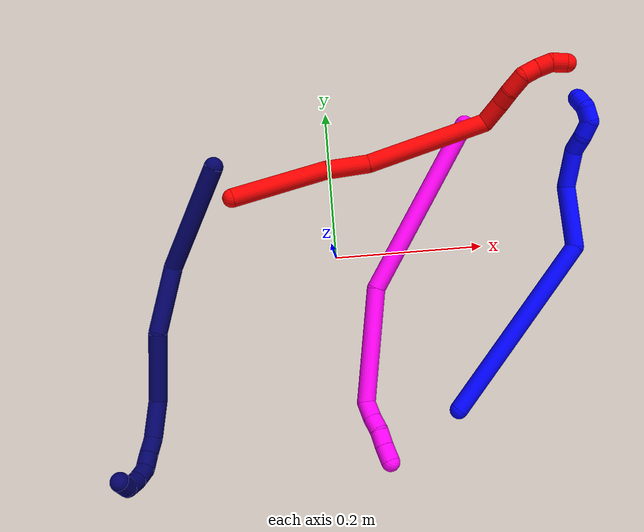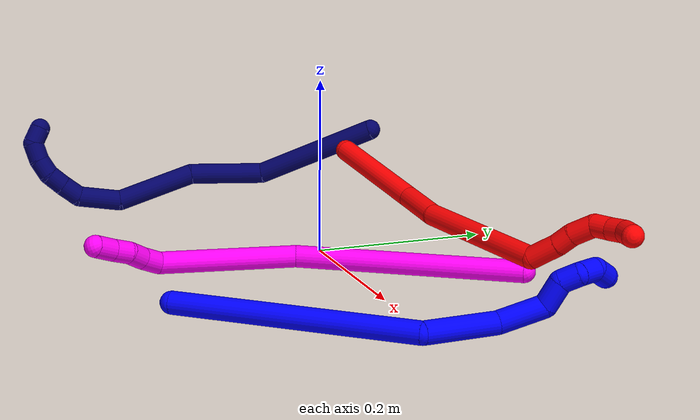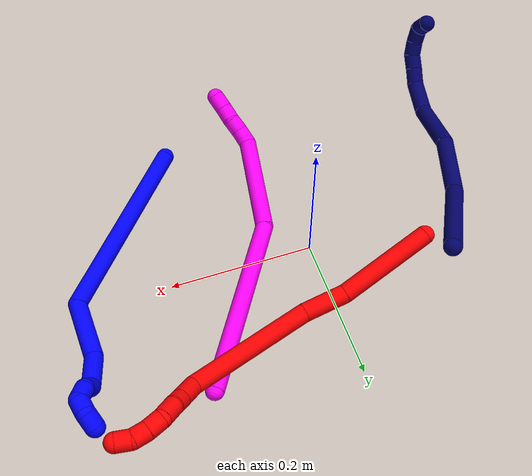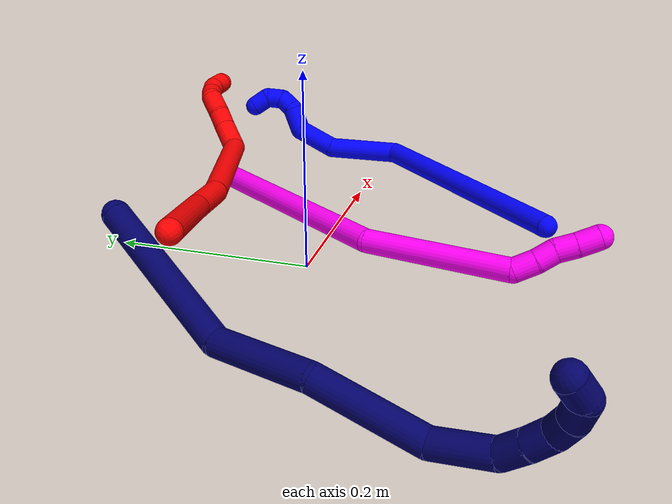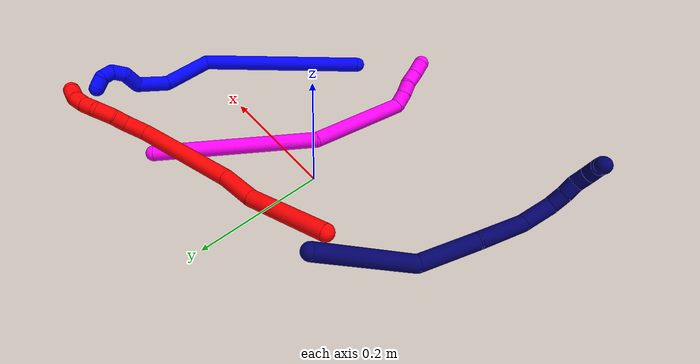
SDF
<sdf version="1.7">
 <world name="default">
  <model name="photoneo_s_sensor">
   <static>1</static>
   <pose>0 0 2 1.57079 1.57079 3.14159</pose>
   <link name="link">
    <inertial><mass>0.1</mass></inertial>
    <sensor name="sensor" type="depth">
     <update_rate>30</update_rate>
     <camera>
      <horizontal_fov>1.22</horizontal_fov>
      <image><width>1920</width><height>1200</height><format>B8G8R8</format></image>
      <clip><near>0.1</near><far>4</far></clip>
      <depth_camera><output>points</output></depth_camera>
     </camera>
     <plugin name="camera_plugin" filename="libgazebo_ros_depth_camera.so">
      <baseline>0.2</baseline>
      <alwaysOn>1</alwaysOn>
      <updateRate>0.0</updateRate>
      <cameraName>camera_ir</cameraName>
      <imageTopicName>/camera/color/image_raw</imageTopicName>
      <cameraInfoTopicName>/camera/color/camera_info</cameraInfoTopicName>
      <depthImageTopicName>/camera/depth/image_raw</depthImageTopicName>
      <depthImageCameraInfoTopicName>/camera/depth/camera_info</depthImageCameraInfoTopicName>
      <pointCloudTopicName>/camera/depth/points</pointCloudTopicName>
      <frameName>fr_optical</frameName>
      <pointCloudCutoff>0.1</pointCloudCutoff>
      <pointCloudCutoffMax>2.0</pointCloudCutoffMax>
      <distortionK1>0</distortionK1>
      <distortionK2>0</distortionK2>
      <distortionK3>0</distortionK3>
      <distortionT1>0</distortionT1>
      <distortionT2>0</distortionT2>
      <CxPrime>0</CxPrime>
      <Cx>0</Cx>
      <Cy>0</Cy>
      <focalLength>0</focalLength>
      <hackBaseline>0</hackBaseline>
     </plugin>
    </sensor>
   </link>
  </model>
  <model name="bin">
   <static>1</static>
   <link name="bottom">
    <collision name="collision-bottom">
     <pose>0 0 -0.01 0 -0 0</pose>
     <geometry><box><size>0.8 0.6 0.02</size></box></geometry>
     <surface>
      <friction><ode><mu>100</mu><mu2>100</mu2></ode></friction>
      <contact><collide_bitmask>65535</collide_bitmask></contact>
     </surface>
    </collision>
   </link>
   <link name="west_wall">
    <collision name="collision-west_wall">
     <pose>-0.41 0 0.1 0 -0 0</pose>
     <geometry><box><size>0.02 0.6 0.2</size></box></geometry>
     <surface>
      <friction><ode><mu>100</mu><mu2>100</mu2></ode></friction>
      <contact><collide_bitmask>65535</collide_bitmask></contact>
     </surface>
    </collision>
   </link>
   <link name="east_wall">
    <collision name="collision-east_wall">
     <pose>0.41 0 0.1 0 -0 0</pose>
     <geometry><box><size>0.02 0.6 0.2</size></box></geometry>
     <surface>
      <friction><ode><mu>100</mu><mu2>100</mu2></ode></friction>
      <contact><collide_bitmask>65535</collide_bitmask></contact>
     </surface>
    </collision>
   </link>
   <link name="south_wall">
    <collision name="collision-south_wall">
     <pose>0 -0.31 0.1 0 -0 0</pose>
     <geometry><box><size>0.8 0.02 0.2</size></box></geometry>
     <surface>
      <friction><ode><mu>100</mu><mu2>100</mu2></ode></friction>
      <contact><collide_bitmask>65535</collide_bitmask></contact>
     </surface>
    </collision>
   </link>
   <link name="north_wall">
    <collision name="collision-north_wall">
     <pose>0 0.31 0.1 0 -0 0</pose>
     <geometry><box><size>0.8 0.02 0.2</size></box></geometry>
     <surface>
      <friction><ode><mu>100</mu><mu2>100</mu2></ode></friction>
      <contact><collide_bitmask>65535</collide_bitmask></contact>
     </surface>
    </collision>
   </link>
  </model>
  <model name="1">
   <static>0</static>
   <link name="1">
    <collision name="collision-cylinder-e_1_1_4">
     <pose>-0.120288 0.064847 -0.00699 -1.67818 -1.07395 1.17084</pose>
     <geometry><cylinder><radius>0.0125</radius><length>0.273664</length></cylinder></geometry>
     <surface>
      <friction><ode><mu>1.16</mu><mu2>1.16</mu2><slip1>0</slip1><slip2>0</slip2></ode></friction>
      <contact><ode><kp>1e+06</kp><kd>1</kd><max_vel>0</max_vel><min_depth>0.001</min_depth></ode></contact>
     </surface>
    </collision>
    <visual name="visual-cylinder-e_1_1_4">
     <pose>-0.120288 0.064847 -0.00699 -1.67818 -1.07395 1.17084</pose>
     <geometry><cylinder><radius>0.0125</radius><length>0.273664</length></cylinder></geometry>
     <material><ambient>0 0 1 1</ambient></material>
    </visual>
    <collision name="collision-cylinder-e_2_4_5">
     <pose>-0.268102 0.146072 0.012988 -0.545803 -0.717363 0.209091</pose>
     <geometry><cylinder><radius>0.0125</radius><length>0.083744</length></cylinder></geometry>
     <surface>
      <friction><ode><mu>1.16</mu><mu2>1.16</mu2><slip1>0</slip1><slip2>0</slip2></ode></friction>
      <contact><ode><kp>1e+06</kp><kd>1</kd><max_vel>0</max_vel><min_depth>0.001</min_depth></ode></contact>
     </surface>
    </collision>
    <visual name="visual-cylinder-e_2_4_5">
     <pose>-0.268102 0.146072 0.012988 -0.545803 -0.717363 0.209091</pose>
     <geometry><cylinder><radius>0.0125</radius><length>0.083744</length></cylinder></geometry>
     <material><ambient>0 0 1 1</ambient></material>
    </visual>
    <collision name="collision-cylinder-e_3_5_6">
     <pose>-0.311178 0.180634 0.049346 -1.09414 -0.649756 0.404675</pose>
     <geometry><cylinder><radius>0.0125</radius><length>0.051403</length></cylinder></geometry>
     <surface>
      <friction><ode><mu>1.16</mu><mu2>1.16</mu2><slip1>0</slip1><slip2>0</slip2></ode></friction>
      <contact><ode><kp>1e+06</kp><kd>1</kd><max_vel>0</max_vel><min_depth>0.001</min_depth></ode></contact>
     </surface>
    </collision>
    <visual name="visual-cylinder-e_3_5_6">
     <pose>-0.311178 0.180634 0.049346 -1.09414 -0.649756 0.404675</pose>
     <geometry><cylinder><radius>0.0125</radius><length>0.051403</length></cylinder></geometry>
     <material><ambient>0 0 1 1</ambient></material>
    </visual>
    <collision name="collision-cylinder-e_4_6_7">
     <pose>-0.326707 0.213772 0.059341 -1.53027 0.001316 -0.001264</pose>
     <geometry><cylinder><radius>0.0125</radius><length>0.029933</length></cylinder></geometry>
     <surface>
      <friction><ode><mu>1.16</mu><mu2>1.16</mu2><slip1>0</slip1><slip2>0</slip2></ode></friction>
      <contact><ode><kp>1e+06</kp><kd>1</kd><max_vel>0</max_vel><min_depth>0.001</min_depth></ode></contact>
     </surface>
    </collision>
    <visual name="visual-cylinder-e_4_6_7">
     <pose>-0.326707 0.213772 0.059341 -1.53027 0.001316 -0.001264</pose>
     <geometry><cylinder><radius>0.0125</radius><length>0.029933</length></cylinder></geometry>
     <material><ambient>0 0 1 1</ambient></material>
    </visual>
    <collision name="collision-cylinder-e_5_7_8">
     <pose>-0.332744 0.237209 0.061269 -1.41629 -0.614395 0.53051</pose>
     <geometry><cylinder><radius>0.0125</radius><length>0.021013</length></cylinder></geometry>
     <surface>
      <friction><ode><mu>1.16</mu><mu2>1.16</mu2><slip1>0</slip1><slip2>0</slip2></ode></friction>
      <contact><ode><kp>1e+06</kp><kd>1</kd><max_vel>0</max_vel><min_depth>0.001</min_depth></ode></contact>
     </surface>
    </collision>
    <visual name="visual-cylinder-e_5_7_8">
     <pose>-0.332744 0.237209 0.061269 -1.41629 -0.614395 0.53051</pose>
     <geometry><cylinder><radius>0.0125</radius><length>0.021013</length></cylinder></geometry>
     <material><ambient>0 0 1 1</ambient></material>
    </visual>
    <collision name="collision-cylinder-e_6_8_9">
     <pose>-0.343867 0.24983 0.070196 -0.49828 -0.529399 0.137711</pose>
     <geometry><cylinder><radius>0.0125</radius><length>0.020064</length></cylinder></geometry>
     <surface>
      <friction><ode><mu>1.16</mu><mu2>1.16</mu2><slip1>0</slip1><slip2>0</slip2></ode></friction>
      <contact><ode><kp>1e+06</kp><kd>1</kd><max_vel>0</max_vel><min_depth>0.001</min_depth></ode></contact>
     </surface>
    </collision>
    <visual name="visual-cylinder-e_6_8_9">
     <pose>-0.343867 0.24983 0.070196 -0.49828 -0.529399 0.137711</pose>
     <geometry><cylinder><radius>0.0125</radius><length>0.020064</length></cylinder></geometry>
     <material><ambient>0 0 1 1</ambient></material>
    </visual>
    <collision name="collision-cylinder-e_7_9_2">
     <pose>-0.3551 0.251489 0.085393 0.315646 -0.657504 -0.108473</pose>
     <geometry><cylinder><radius>0.0125</radius><length>0.020179</length></cylinder></geometry>
     <surface>
      <friction><ode><mu>1.16</mu><mu2>1.16</mu2><slip1>0</slip1><slip2>0</slip2></ode></friction>
      <contact><ode><kp>1e+06</kp><kd>1</kd><max_vel>0</max_vel><min_depth>0.001</min_depth></ode></contact>
     </surface>
    </collision>
    <visual name="visual-cylinder-e_7_9_2">
     <pose>-0.3551 0.251489 0.085393 0.315646 -0.657504 -0.108473</pose>
     <geometry><cylinder><radius>0.0125</radius><length>0.020179</length></cylinder></geometry>
     <material><ambient>0 0 1 1</ambient></material>
    </visual>
    <collision name="collision-sphere-2">
     <pose>-0.361266 0.24901 0.092984 0 -0 0</pose>
     <geometry><sphere><radius>0.0125</radius></sphere></geometry>
     <surface>
      <friction><ode><mu>1.16</mu><mu2>1.16</mu2><slip1>0</slip1><slip2>0</slip2></ode></friction>
      <contact><ode><kp>1e+06</kp><kd>1</kd><max_vel>0</max_vel><min_depth>0.001</min_depth></ode></contact>
     </surface>
    </collision>
    <visual name="visual-sphere-2">
     <pose>-0.361266 0.24901 0.092984 0 -0 0</pose>
     <geometry><sphere><radius>0.0125</radius></sphere></geometry>
     <material><ambient>0 0 1 1</ambient></material>
    </visual>
    <collision name="collision-sphere-9">
     <pose>-0.348934 0.253968 0.077802 0 -0 0</pose>
     <geometry><sphere><radius>0.0125</radius></sphere></geometry>
     <surface>
      <friction><ode><mu>1.16</mu><mu2>1.16</mu2><slip1>0</slip1><slip2>0</slip2></ode></friction>
      <contact><ode><kp>1e+06</kp><kd>1</kd><max_vel>0</max_vel><min_depth>0.001</min_depth></ode></contact>
     </surface>
    </collision>
    <visual name="visual-sphere-9">
     <pose>-0.348934 0.253968 0.077802 0 -0 0</pose>
     <geometry><sphere><radius>0.0125</radius></sphere></geometry>
     <material><ambient>0 0 1 1</ambient></material>
    </visual>
    <collision name="collision-sphere-4">
     <pose>-0.240575 0.129693 -0.01398 0 -0 0</pose>
     <geometry><sphere><radius>0.0125</radius></sphere></geometry>
     <surface>
      <friction><ode><mu>1.16</mu><mu2>1.16</mu2><slip1>0</slip1><slip2>0</slip2></ode></friction>
      <contact><ode><kp>1e+06</kp><kd>1</kd><max_vel>0</max_vel><min_depth>0.001</min_depth></ode></contact>
     </surface>
    </collision>
    <visual name="visual-sphere-4">
     <pose>-0.240575 0.129693 -0.01398 0 -0 0</pose>
     <geometry><sphere><radius>0.0125</radius></sphere></geometry>
     <material><ambient>0 0 1 1</ambient></material>
    </visual>
    <collision name="collision-sphere-1">
     <geometry><sphere><radius>0.0125</radius></sphere></geometry>
     <surface>
      <friction><ode><mu>1.16</mu><mu2>1.16</mu2><slip1>0</slip1><slip2>0</slip2></ode></friction>
      <contact><ode><kp>1e+06</kp><kd>1</kd><max_vel>0</max_vel><min_depth>0.001</min_depth></ode></contact>
     </surface>
    </collision>
    <visual name="visual-sphere-1">
     <geometry><sphere><radius>0.0125</radius></sphere></geometry>
     <material><ambient>0 0 1 1</ambient></material>
    </visual>
    <collision name="collision-sphere-8">
     <pose>-0.338801 0.245691 0.06259 0 -0 0</pose>
     <geometry><sphere><radius>0.0125</radius></sphere></geometry>
     <surface>
      <friction><ode><mu>1.16</mu><mu2>1.16</mu2><slip1>0</slip1><slip2>0</slip2></ode></friction>
      <contact><ode><kp>1e+06</kp><kd>1</kd><max_vel>0</max_vel><min_depth>0.001</min_depth></ode></contact>
     </surface>
    </collision>
    <visual name="visual-sphere-8">
     <pose>-0.338801 0.245691 0.06259 0 -0 0</pose>
     <geometry><sphere><radius>0.0125</radius></sphere></geometry>
     <material><ambient>0 0 1 1</ambient></material>
    </visual>
    <collision name="collision-sphere-5">
     <pose>-0.295629 0.162451 0.039956 0 -0 0</pose>
     <geometry><sphere><radius>0.0125</radius></sphere></geometry>
     <surface>
      <friction><ode><mu>1.16</mu><mu2>1.16</mu2><slip1>0</slip1><slip2>0</slip2></ode></friction>
      <contact><ode><kp>1e+06</kp><kd>1</kd><max_vel>0</max_vel><min_depth>0.001</min_depth></ode></contact>
     </surface>
    </collision>
    <visual name="visual-sphere-5">
     <pose>-0.295629 0.162451 0.039956 0 -0 0</pose>
     <geometry><sphere><radius>0.0125</radius></sphere></geometry>
     <material><ambient>0 0 1 1</ambient></material>
    </visual>
    <collision name="collision-sphere-6">
     <pose>-0.326727 0.198817 0.058735 0 -0 0</pose>
     <geometry><sphere><radius>0.0125</radius></sphere></geometry>
     <surface>
      <friction><ode><mu>1.16</mu><mu2>1.16</mu2><slip1>0</slip1><slip2>0</slip2></ode></friction>
      <contact><ode><kp>1e+06</kp><kd>1</kd><max_vel>0</max_vel><min_depth>0.001</min_depth></ode></contact>
     </surface>
    </collision>
    <visual name="visual-sphere-6">
     <pose>-0.326727 0.198817 0.058735 0 -0 0</pose>
     <geometry><sphere><radius>0.0125</radius></sphere></geometry>
     <material><ambient>0 0 1 1</ambient></material>
    </visual>
    <collision name="collision-sphere-7">
     <pose>-0.326688 0.228726 0.059948 0 -0 0</pose>
     <geometry><sphere><radius>0.0125</radius></sphere></geometry>
     <surface>
      <friction><ode><mu>1.16</mu><mu2>1.16</mu2><slip1>0</slip1><slip2>0</slip2></ode></friction>
      <contact><ode><kp>1e+06</kp><kd>1</kd><max_vel>0</max_vel><min_depth>0.001</min_depth></ode></contact>
     </surface>
    </collision>
    <visual name="visual-sphere-7">
     <pose>-0.326688 0.228726 0.059948 0 -0 0</pose>
     <geometry><sphere><radius>0.0125</radius></sphere></geometry>
     <material><ambient>0 0 1 1</ambient></material>
    </visual>
    <inertial>
     <pose>-0.204404 0.121469 0.015813 0 -0 0</pose>
     <mass>0.5</mass>
     <inertia>
      <ixx>0.001114</ixx>
      <ixy>0</ixy>
      <ixz>0</ixz>
      <iyy>0.002158</iyy>
      <iyz>0</iyz>
      <izz>0.000714</izz>
     </inertia>
    </inertial>
   </link>
   <pose>0.149707 -0.219974 0.00636 1.62249 -0.497248 -2.24902</pose>
  </model>
  <model name="2">
   <static>0</static>
   <link name="2">
    <collision name="collision-cylinder-e_1_1_4">
     <pose>0.010645 0.046514 -0.044688 -2.33618 0.163554 -0.380154</pose>
     <geometry><cylinder><radius>0.0125</radius><length>0.130749</length></cylinder></geometry>
     <surface>
      <friction><ode><mu>1.16</mu><mu2>1.16</mu2><slip1>0</slip1><slip2>0</slip2></ode></friction>
      <contact><ode><kp>1e+06</kp><kd>1</kd><max_vel>0</max_vel><min_depth>0.001</min_depth></ode></contact>
     </surface>
    </collision>
    <visual name="visual-cylinder-e_1_1_4">
     <pose>0.010645 0.046514 -0.044688 -2.33618 0.163554 -0.380154</pose>
     <geometry><cylinder><radius>0.0125</radius><length>0.130749</length></cylinder></geometry>
     <material><ambient>1 0 0 1</ambient></material>
    </visual>
    <collision name="collision-cylinder-e_2_4_5">
     <pose>0.025008 0.109495 -0.112997 -2.53276 0.128441 -0.403797</pose>
     <geometry><cylinder><radius>0.0125</radius><length>0.058067</length></cylinder></geometry>
     <surface>
      <friction><ode><mu>1.16</mu><mu2>1.16</mu2><slip1>0</slip1><slip2>0</slip2></ode></friction>
      <contact><ode><kp>1e+06</kp><kd>1</kd><max_vel>0</max_vel><min_depth>0.001</min_depth></ode></contact>
     </surface>
    </collision>
    <visual name="visual-cylinder-e_2_4_5">
     <pose>0.025008 0.109495 -0.112997 -2.53276 0.128441 -0.403797</pose>
     <geometry><cylinder><radius>0.0125</radius><length>0.058067</length></cylinder></geometry>
     <material><ambient>1 0 0 1</ambient></material>
    </visual>
    <collision name="collision-cylinder-e_3_5_6">
     <pose>0.053768 0.176598 -0.19864 -2.45694 0.303113 -0.809794</pose>
     <geometry><cylinder><radius>0.0125</radius><length>0.167785</length></cylinder></geometry>
     <surface>
      <friction><ode><mu>1.16</mu><mu2>1.16</mu2><slip1>0</slip1><slip2>0</slip2></ode></friction>
      <contact><ode><kp>1e+06</kp><kd>1</kd><max_vel>0</max_vel><min_depth>0.001</min_depth></ode></contact>
     </surface>
    </collision>
    <visual name="visual-cylinder-e_3_5_6">
     <pose>0.053768 0.176598 -0.19864 -2.45694 0.303113 -0.809794</pose>
     <geometry><cylinder><radius>0.0125</radius><length>0.167785</length></cylinder></geometry>
     <material><ambient>1 0 0 1</ambient></material>
    </visual>
    <collision name="collision-cylinder-e_4_6_7">
     <pose>0.093809 0.230402 -0.26849 -2.75689 1.05812 -2.49847</pose>
     <geometry><cylinder><radius>0.0125</radius><length>0.034425</length></cylinder></geometry>
     <surface>
      <friction><ode><mu>1.16</mu><mu2>1.16</mu2><slip1>0</slip1><slip2>0</slip2></ode></friction>
      <contact><ode><kp>1e+06</kp><kd>1</kd><max_vel>0</max_vel><min_depth>0.001</min_depth></ode></contact>
     </surface>
    </collision>
    <visual name="visual-cylinder-e_4_6_7">
     <pose>0.093809 0.230402 -0.26849 -2.75689 1.05812 -2.49847</pose>
     <geometry><cylinder><radius>0.0125</radius><length>0.034425</length></cylinder></geometry>
     <material><ambient>1 0 0 1</ambient></material>
    </visual>
    <collision name="collision-cylinder-e_5_7_8">
     <pose>0.117938 0.233942 -0.280535 -3.05401 1.13634 -3.00453</pose>
     <geometry><cylinder><radius>0.0125</radius><length>0.020128</length></cylinder></geometry>
     <surface>
      <friction><ode><mu>1.16</mu><mu2>1.16</mu2><slip1>0</slip1><slip2>0</slip2></ode></friction>
      <contact><ode><kp>1e+06</kp><kd>1</kd><max_vel>0</max_vel><min_depth>0.001</min_depth></ode></contact>
     </surface>
    </collision>
    <visual name="visual-cylinder-e_5_7_8">
     <pose>0.117938 0.233942 -0.280535 -3.05401 1.13634 -3.00453</pose>
     <geometry><cylinder><radius>0.0125</radius><length>0.020128</length></cylinder></geometry>
     <material><ambient>1 0 0 1</ambient></material>
    </visual>
    <collision name="collision-cylinder-e_6_8_9">
     <pose>0.138844 0.237708 -0.291074 -2.64845 1.02368 -2.29917</pose>
     <geometry><cylinder><radius>0.0125</radius><length>0.027579</length></cylinder></geometry>
     <surface>
      <friction><ode><mu>1.16</mu><mu2>1.16</mu2><slip1>0</slip1><slip2>0</slip2></ode></friction>
      <contact><ode><kp>1e+06</kp><kd>1</kd><max_vel>0</max_vel><min_depth>0.001</min_depth></ode></contact>
     </surface>
    </collision>
    <visual name="visual-cylinder-e_6_8_9">
     <pose>0.138844 0.237708 -0.291074 -2.64845 1.02368 -2.29917</pose>
     <geometry><cylinder><radius>0.0125</radius><length>0.027579</length></cylinder></geometry>
     <material><ambient>1 0 0 1</ambient></material>
    </visual>
    <collision name="collision-cylinder-e_7_9_10">
     <pose>0.155311 0.247488 -0.304432 -2.40497 0.458488 -1.08766</pose>
     <geometry><cylinder><radius>0.0125</radius><length>0.021195</length></cylinder></geometry>
     <surface>
      <friction><ode><mu>1.16</mu><mu2>1.16</mu2><slip1>0</slip1><slip2>0</slip2></ode></friction>
      <contact><ode><kp>1e+06</kp><kd>1</kd><max_vel>0</max_vel><min_depth>0.001</min_depth></ode></contact>
     </surface>
    </collision>
    <visual name="visual-cylinder-e_7_9_10">
     <pose>0.155311 0.247488 -0.304432 -2.40497 0.458488 -1.08766</pose>
     <geometry><cylinder><radius>0.0125</radius><length>0.021195</length></cylinder></geometry>
     <material><ambient>1 0 0 1</ambient></material>
    </visual>
    <collision name="collision-cylinder-e_8_10_11">
     <pose>0.164059 0.258804 -0.319196 -2.57332 0.416847 -1.25357</pose>
     <geometry><cylinder><radius>0.0125</radius><length>0.020046</length></cylinder></geometry>
     <surface>
      <friction><ode><mu>1.16</mu><mu2>1.16</mu2><slip1>0</slip1><slip2>0</slip2></ode></friction>
      <contact><ode><kp>1e+06</kp><kd>1</kd><max_vel>0</max_vel><min_depth>0.001</min_depth></ode></contact>
     </surface>
    </collision>
    <visual name="visual-cylinder-e_8_10_11">
     <pose>0.164059 0.258804 -0.319196 -2.57332 0.416847 -1.25357</pose>
     <geometry><cylinder><radius>0.0125</radius><length>0.020046</length></cylinder></geometry>
     <material><ambient>1 0 0 1</ambient></material>
    </visual>
    <collision name="collision-cylinder-e_9_11_2">
     <pose>0.168739 0.266958 -0.33638 -2.81341 0.062116 -0.37095</pose>
     <geometry><cylinder><radius>0.0125</radius><length>0.020026</length></cylinder></geometry>
     <surface>
      <friction><ode><mu>1.16</mu><mu2>1.16</mu2><slip1>0</slip1><slip2>0</slip2></ode></friction>
      <contact><ode><kp>1e+06</kp><kd>1</kd><max_vel>0</max_vel><min_depth>0.001</min_depth></ode></contact>
     </surface>
    </collision>
    <visual name="visual-cylinder-e_9_11_2">
     <pose>0.168739 0.266958 -0.33638 -2.81341 0.062116 -0.37095</pose>
     <geometry><cylinder><radius>0.0125</radius><length>0.020026</length></cylinder></geometry>
     <material><ambient>1 0 0 1</ambient></material>
    </visual>
    <collision name="collision-sphere-2">
     <pose>0.16936 0.270179 -0.345841 0 -0 0</pose>
     <geometry><sphere><radius>0.0125</radius></sphere></geometry>
     <surface>
      <friction><ode><mu>1.16</mu><mu2>1.16</mu2><slip1>0</slip1><slip2>0</slip2></ode></friction>
      <contact><ode><kp>1e+06</kp><kd>1</kd><max_vel>0</max_vel><min_depth>0.001</min_depth></ode></contact>
     </surface>
    </collision>
    <visual name="visual-sphere-2">
     <pose>0.16936 0.270179 -0.345841 0 -0 0</pose>
     <geometry><sphere><radius>0.0125</radius></sphere></geometry>
     <material><ambient>1 0 0 1</ambient></material>
    </visual>
    <collision name="collision-sphere-11">
     <pose>0.168117 0.263736 -0.32692 0 -0 0</pose>
     <geometry><sphere><radius>0.0125</radius></sphere></geometry>
     <surface>
      <friction><ode><mu>1.16</mu><mu2>1.16</mu2><slip1>0</slip1><slip2>0</slip2></ode></friction>
      <contact><ode><kp>1e+06</kp><kd>1</kd><max_vel>0</max_vel><min_depth>0.001</min_depth></ode></contact>
     </surface>
    </collision>
    <visual name="visual-sphere-11">
     <pose>0.168117 0.263736 -0.32692 0 -0 0</pose>
     <geometry><sphere><radius>0.0125</radius></sphere></geometry>
     <material><ambient>1 0 0 1</ambient></material>
    </visual>
    <collision name="collision-sphere-10">
     <pose>0.160001 0.253872 -0.311472 0 -0 0</pose>
     <geometry><sphere><radius>0.0125</radius></sphere></geometry>
     <surface>
      <friction><ode><mu>1.16</mu><mu2>1.16</mu2><slip1>0</slip1><slip2>0</slip2></ode></friction>
      <contact><ode><kp>1e+06</kp><kd>1</kd><max_vel>0</max_vel><min_depth>0.001</min_depth></ode></contact>
     </surface>
    </collision>
    <visual name="visual-sphere-10">
     <pose>0.160001 0.253872 -0.311472 0 -0 0</pose>
     <geometry><sphere><radius>0.0125</radius></sphere></geometry>
     <material><ambient>1 0 0 1</ambient></material>
    </visual>
    <collision name="collision-sphere-9">
     <pose>0.15062 0.241104 -0.297393 0 -0 0</pose>
     <geometry><sphere><radius>0.0125</radius></sphere></geometry>
     <surface>
      <friction><ode><mu>1.16</mu><mu2>1.16</mu2><slip1>0</slip1><slip2>0</slip2></ode></friction>
      <contact><ode><kp>1e+06</kp><kd>1</kd><max_vel>0</max_vel><min_depth>0.001</min_depth></ode></contact>
     </surface>
    </collision>
    <visual name="visual-sphere-9">
     <pose>0.15062 0.241104 -0.297393 0 -0 0</pose>
     <geometry><sphere><radius>0.0125</radius></sphere></geometry>
     <material><ambient>1 0 0 1</ambient></material>
    </visual>
    <collision name="collision-sphere-4">
     <pose>0.021289 0.093027 -0.089376 0 -0 0</pose>
     <geometry><sphere><radius>0.0125</radius></sphere></geometry>
     <surface>
      <friction><ode><mu>1.16</mu><mu2>1.16</mu2><slip1>0</slip1><slip2>0</slip2></ode></friction>
      <contact><ode><kp>1e+06</kp><kd>1</kd><max_vel>0</max_vel><min_depth>0.001</min_depth></ode></contact>
     </surface>
    </collision>
    <visual name="visual-sphere-4">
     <pose>0.021289 0.093027 -0.089376 0 -0 0</pose>
     <geometry><sphere><radius>0.0125</radius></sphere></geometry>
     <material><ambient>1 0 0 1</ambient></material>
    </visual>
    <collision name="collision-sphere-1">
     <geometry><sphere><radius>0.0125</radius></sphere></geometry>
     <surface>
      <friction><ode><mu>1.16</mu><mu2>1.16</mu2><slip1>0</slip1><slip2>0</slip2></ode></friction>
      <contact><ode><kp>1e+06</kp><kd>1</kd><max_vel>0</max_vel><min_depth>0.001</min_depth></ode></contact>
     </surface>
    </collision>
    <visual name="visual-sphere-1">
     <geometry><sphere><radius>0.0125</radius></sphere></geometry>
     <material><ambient>1 0 0 1</ambient></material>
    </visual>
    <collision name="collision-sphere-8">
     <pose>0.127067 0.234312 -0.284755 0 -0 0</pose>
     <geometry><sphere><radius>0.0125</radius></sphere></geometry>
     <surface>
      <friction><ode><mu>1.16</mu><mu2>1.16</mu2><slip1>0</slip1><slip2>0</slip2></ode></friction>
      <contact><ode><kp>1e+06</kp><kd>1</kd><max_vel>0</max_vel><min_depth>0.001</min_depth></ode></contact>
     </surface>
    </collision>
    <visual name="visual-sphere-8">
     <pose>0.127067 0.234312 -0.284755 0 -0 0</pose>
     <geometry><sphere><radius>0.0125</radius></sphere></geometry>
     <material><ambient>1 0 0 1</ambient></material>
    </visual>
    <collision name="collision-sphere-5">
     <pose>0.028727 0.125963 -0.136617 0 -0 0</pose>
     <geometry><sphere><radius>0.0125</radius></sphere></geometry>
     <surface>
      <friction><ode><mu>1.16</mu><mu2>1.16</mu2><slip1>0</slip1><slip2>0</slip2></ode></friction>
      <contact><ode><kp>1e+06</kp><kd>1</kd><max_vel>0</max_vel><min_depth>0.001</min_depth></ode></contact>
     </surface>
    </collision>
    <visual name="visual-sphere-5">
     <pose>0.028727 0.125963 -0.136617 0 -0 0</pose>
     <geometry><sphere><radius>0.0125</radius></sphere></geometry>
     <material><ambient>1 0 0 1</ambient></material>
    </visual>
    <collision name="collision-sphere-6">
     <pose>0.07881 0.227234 -0.260664 0 -0 0</pose>
     <geometry><sphere><radius>0.0125</radius></sphere></geometry>
     <surface>
      <friction><ode><mu>1.16</mu><mu2>1.16</mu2><slip1>0</slip1><slip2>0</slip2></ode></friction>
      <contact><ode><kp>1e+06</kp><kd>1</kd><max_vel>0</max_vel><min_depth>0.001</min_depth></ode></contact>
     </surface>
    </collision>
    <visual name="visual-sphere-6">
     <pose>0.07881 0.227234 -0.260664 0 -0 0</pose>
     <geometry><sphere><radius>0.0125</radius></sphere></geometry>
     <material><ambient>1 0 0 1</ambient></material>
    </visual>
    <collision name="collision-sphere-7">
     <pose>0.108809 0.233571 -0.276316 0 -0 0</pose>
     <geometry><sphere><radius>0.0125</radius></sphere></geometry>
     <surface>
      <friction><ode><mu>1.16</mu><mu2>1.16</mu2><slip1>0</slip1><slip2>0</slip2></ode></friction>
      <contact><ode><kp>1e+06</kp><kd>1</kd><max_vel>0</max_vel><min_depth>0.001</min_depth></ode></contact>
     </surface>
    </collision>
    <visual name="visual-sphere-7">
     <pose>0.108809 0.233571 -0.276316 0 -0 0</pose>
     <geometry><sphere><radius>0.0125</radius></sphere></geometry>
     <material><ambient>1 0 0 1</ambient></material>
    </visual>
    <inertial>
     <pose>0.062515 0.154092 -0.176475 0 -0 0</pose>
     <mass>0.5</mass>
     <inertia>
      <ixx>0.000108</ixx>
      <ixy>0</ixy>
      <ixz>0</ixz>
      <iyy>-0.000619</iyy>
      <iyz>0</iyz>
      <izz>-0.000581</izz>
     </inertia>
    </inertial>
   </link>
   <pose>-0.126413 0.080776 0.085099 -1.90267 -0.68699 1.38925</pose>
  </model>
  <model name="7">
   <static>0</static>
   <link name="7">
    <collision name="collision-cylinder-e_1_1_4">
     <pose>0.044642 -0.0346 -0.050714 2.54288 0.628723 1.62289</pose>
     <geometry><cylinder><radius>0.0125</radius><length>0.151815</length></cylinder></geometry>
     <surface>
      <friction><ode><mu>1.16</mu><mu2>1.16</mu2><slip1>0</slip1><slip2>0</slip2></ode></friction>
      <contact><ode><kp>1e+06</kp><kd>1</kd><max_vel>0</max_vel><min_depth>0.001</min_depth></ode></contact>
     </surface>
    </collision>
    <visual name="visual-cylinder-e_1_1_4">
     <pose>0.044642 -0.0346 -0.050714 2.54288 0.628723 1.62289</pose>
     <geometry><cylinder><radius>0.0125</radius><length>0.151815</length></cylinder></geometry>
     <material><ambient>0.003922 0 0.403922 1</ambient></material>
    </visual>
    <collision name="collision-cylinder-e_2_4_5">
     <pose>0.128578 -0.075056 -0.12211 2.86563 1.07023 2.6814</pose>
     <geometry><cylinder><radius>0.0125</radius><length>0.089578</length></cylinder></geometry>
     <surface>
      <friction><ode><mu>1.16</mu><mu2>1.16</mu2><slip1>0</slip1><slip2>0</slip2></ode></friction>
      <contact><ode><kp>1e+06</kp><kd>1</kd><max_vel>0</max_vel><min_depth>0.001</min_depth></ode></contact>
     </surface>
    </collision>
    <visual name="visual-cylinder-e_2_4_5">
     <pose>0.128578 -0.075056 -0.12211 2.86563 1.07023 2.6814</pose>
     <geometry><cylinder><radius>0.0125</radius><length>0.089578</length></cylinder></geometry>
     <material><ambient>0.003922 0 0.403922 1</ambient></material>
    </visual>
    <collision name="collision-cylinder-e_3_5_6">
     <pose>0.199931 -0.084548 -0.178246 3.03943 0.732549 2.87659</pose>
     <geometry><cylinder><radius>0.0125</radius><length>0.095874</length></cylinder></geometry>
     <surface>
      <friction><ode><mu>1.16</mu><mu2>1.16</mu2><slip1>0</slip1><slip2>0</slip2></ode></friction>
      <contact><ode><kp>1e+06</kp><kd>1</kd><max_vel>0</max_vel><min_depth>0.001</min_depth></ode></contact>
     </surface>
    </collision>
    <visual name="visual-cylinder-e_3_5_6">
     <pose>0.199931 -0.084548 -0.178246 3.03943 0.732549 2.87659</pose>
     <geometry><cylinder><radius>0.0125</radius><length>0.095874</length></cylinder></geometry>
     <material><ambient>0.003922 0 0.403922 1</ambient></material>
    </visual>
    <collision name="collision-cylinder-e_4_6_7">
     <pose>0.255869 -0.087058 -0.223358 -3.02563 1.18414 -2.96941</pose>
     <geometry><cylinder><radius>0.0125</radius><length>0.051565</length></cylinder></geometry>
     <surface>
      <friction><ode><mu>1.16</mu><mu2>1.16</mu2><slip1>0</slip1><slip2>0</slip2></ode></friction>
      <contact><ode><kp>1e+06</kp><kd>1</kd><max_vel>0</max_vel><min_depth>0.001</min_depth></ode></contact>
     </surface>
    </collision>
    <visual name="visual-cylinder-e_4_6_7">
     <pose>0.255869 -0.087058 -0.223358 -3.02563 1.18414 -2.96941</pose>
     <geometry><cylinder><radius>0.0125</radius><length>0.051565</length></cylinder></geometry>
     <material><ambient>0.003922 0 0.403922 1</ambient></material>
    </visual>
    <collision name="collision-cylinder-e_5_7_8">
     <pose>0.292019 -0.084046 -0.231631 -0.938022 1.38238 -0.79395</pose>
     <geometry><cylinder><radius>0.0125</radius><length>0.024984</length></cylinder></geometry>
     <surface>
      <friction><ode><mu>1.16</mu><mu2>1.16</mu2><slip1>0</slip1><slip2>0</slip2></ode></friction>
      <contact><ode><kp>1e+06</kp><kd>1</kd><max_vel>0</max_vel><min_depth>0.001</min_depth></ode></contact>
     </surface>
    </collision>
    <visual name="visual-cylinder-e_5_7_8">
     <pose>0.292019 -0.084046 -0.231631 -0.938022 1.38238 -0.79395</pose>
     <geometry><cylinder><radius>0.0125</radius><length>0.024984</length></cylinder></geometry>
     <material><ambient>0.003922 0 0.403922 1</ambient></material>
    </visual>
    <collision name="collision-cylinder-e_6_8_9">
     <pose>0.314854 -0.07964 -0.228514 -0.968184 1.28904 -0.752732</pose>
     <geometry><cylinder><radius>0.0125</radius><length>0.021995</length></cylinder></geometry>
     <surface>
      <friction><ode><mu>1.16</mu><mu2>1.16</mu2><slip1>0</slip1><slip2>0</slip2></ode></friction>
      <contact><ode><kp>1e+06</kp><kd>1</kd><max_vel>0</max_vel><min_depth>0.001</min_depth></ode></contact>
     </surface>
    </collision>
    <visual name="visual-cylinder-e_6_8_9">
     <pose>0.314854 -0.07964 -0.228514 -0.968184 1.28904 -0.752732</pose>
     <geometry><cylinder><radius>0.0125</radius><length>0.021995</length></cylinder></geometry>
     <material><ambient>0.003922 0 0.403922 1</ambient></material>
    </visual>
    <collision name="collision-cylinder-e_7_9_10">
     <pose>0.334767 -0.076647 -0.221678 -0.092631 1.06932 -0.054881</pose>
     <geometry><cylinder><radius>0.0125</radius><length>0.021324</length></cylinder></geometry>
     <surface>
      <friction><ode><mu>1.16</mu><mu2>1.16</mu2><slip1>0</slip1><slip2>0</slip2></ode></friction>
      <contact><ode><kp>1e+06</kp><kd>1</kd><max_vel>0</max_vel><min_depth>0.001</min_depth></ode></contact>
     </surface>
    </collision>
    <visual name="visual-cylinder-e_7_9_10">
     <pose>0.334767 -0.076647 -0.221678 -0.092631 1.06932 -0.054881</pose>
     <geometry><cylinder><radius>0.0125</radius><length>0.021324</length></cylinder></geometry>
     <material><ambient>0.003922 0 0.403922 1</ambient></material>
    </visual>
    <collision name="collision-cylinder-e_8_10_11">
     <pose>0.352278 -0.07569 -0.209018 -0.063806 0.822926 -0.027851</pose>
     <geometry><cylinder><radius>0.0125</radius><length>0.022266</length></cylinder></geometry>
     <surface>
      <friction><ode><mu>1.16</mu><mu2>1.16</mu2><slip1>0</slip1><slip2>0</slip2></ode></friction>
      <contact><ode><kp>1e+06</kp><kd>1</kd><max_vel>0</max_vel><min_depth>0.001</min_depth></ode></contact>
     </surface>
    </collision>
    <visual name="visual-cylinder-e_8_10_11">
     <pose>0.352278 -0.07569 -0.209018 -0.063806 0.822926 -0.027851</pose>
     <geometry><cylinder><radius>0.0125</radius><length>0.022266</length></cylinder></geometry>
     <material><ambient>0.003922 0 0.403922 1</ambient></material>
    </visual>
    <collision name="collision-cylinder-e_9_11_2">
     <pose>0.361046 -0.075821 -0.1912 0.05976 0.058859 0.00176</pose>
     <geometry><cylinder><radius>0.0125</radius><length>0.020598</length></cylinder></geometry>
     <surface>
      <friction><ode><mu>1.16</mu><mu2>1.16</mu2><slip1>0</slip1><slip2>0</slip2></ode></friction>
      <contact><ode><kp>1e+06</kp><kd>1</kd><max_vel>0</max_vel><min_depth>0.001</min_depth></ode></contact>
     </surface>
    </collision>
    <visual name="visual-cylinder-e_9_11_2">
     <pose>0.361046 -0.075821 -0.1912 0.05976 0.058859 0.00176</pose>
     <geometry><cylinder><radius>0.0125</radius><length>0.020598</length></cylinder></geometry>
     <material><ambient>0.003922 0 0.403922 1</ambient></material>
    </visual>
    <collision name="collision-sphere-2">
     <pose>0.361652 -0.076435 -0.180937 0 -0 0</pose>
     <geometry><sphere><radius>0.0125</radius></sphere></geometry>
     <surface>
      <friction><ode><mu>1.16</mu><mu2>1.16</mu2><slip1>0</slip1><slip2>0</slip2></ode></friction>
      <contact><ode><kp>1e+06</kp><kd>1</kd><max_vel>0</max_vel><min_depth>0.001</min_depth></ode></contact>
     </surface>
    </collision>
    <visual name="visual-sphere-2">
     <pose>0.361652 -0.076435 -0.180937 0 -0 0</pose>
     <geometry><sphere><radius>0.0125</radius></sphere></geometry>
     <material><ambient>0.003922 0 0.403922 1</ambient></material>
    </visual>
    <collision name="collision-sphere-11">
     <pose>0.36044 -0.075207 -0.201462 0 -0 0</pose>
     <geometry><sphere><radius>0.0125</radius></sphere></geometry>
     <surface>
      <friction><ode><mu>1.16</mu><mu2>1.16</mu2><slip1>0</slip1><slip2>0</slip2></ode></friction>
      <contact><ode><kp>1e+06</kp><kd>1</kd><max_vel>0</max_vel><min_depth>0.001</min_depth></ode></contact>
     </surface>
    </collision>
    <visual name="visual-sphere-11">
     <pose>0.36044 -0.075207 -0.201462 0 -0 0</pose>
     <geometry><sphere><radius>0.0125</radius></sphere></geometry>
     <material><ambient>0.003922 0 0.403922 1</ambient></material>
    </visual>
    <collision name="collision-sphere-10">
     <pose>0.344116 -0.076173 -0.216574 0 -0 0</pose>
     <geometry><sphere><radius>0.0125</radius></sphere></geometry>
     <surface>
      <friction><ode><mu>1.16</mu><mu2>1.16</mu2><slip1>0</slip1><slip2>0</slip2></ode></friction>
      <contact><ode><kp>1e+06</kp><kd>1</kd><max_vel>0</max_vel><min_depth>0.001</min_depth></ode></contact>
     </surface>
    </collision>
    <visual name="visual-sphere-10">
     <pose>0.344116 -0.076173 -0.216574 0 -0 0</pose>
     <geometry><sphere><radius>0.0125</radius></sphere></geometry>
     <material><ambient>0.003922 0 0.403922 1</ambient></material>
    </visual>
    <collision name="collision-sphere-9">
     <pose>0.325418 -0.077121 -0.226781 0 -0 0</pose>
     <geometry><sphere><radius>0.0125</radius></sphere></geometry>
     <surface>
      <friction><ode><mu>1.16</mu><mu2>1.16</mu2><slip1>0</slip1><slip2>0</slip2></ode></friction>
      <contact><ode><kp>1e+06</kp><kd>1</kd><max_vel>0</max_vel><min_depth>0.001</min_depth></ode></contact>
     </surface>
    </collision>
    <visual name="visual-sphere-9">
     <pose>0.325418 -0.077121 -0.226781 0 -0 0</pose>
     <geometry><sphere><radius>0.0125</radius></sphere></geometry>
     <material><ambient>0.003922 0 0.403922 1</ambient></material>
    </visual>
    <collision name="collision-sphere-4">
     <pose>0.089284 -0.0692 -0.101428 0 -0 0</pose>
     <geometry><sphere><radius>0.0125</radius></sphere></geometry>
     <surface>
      <friction><ode><mu>1.16</mu><mu2>1.16</mu2><slip1>0</slip1><slip2>0</slip2></ode></friction>
      <contact><ode><kp>1e+06</kp><kd>1</kd><max_vel>0</max_vel><min_depth>0.001</min_depth></ode></contact>
     </surface>
    </collision>
    <visual name="visual-sphere-4">
     <pose>0.089284 -0.0692 -0.101428 0 -0 0</pose>
     <geometry><sphere><radius>0.0125</radius></sphere></geometry>
     <material><ambient>0.003922 0 0.403922 1</ambient></material>
    </visual>
    <collision name="collision-sphere-1">
     <geometry><sphere><radius>0.0125</radius></sphere></geometry>
     <surface>
      <friction><ode><mu>1.16</mu><mu2>1.16</mu2><slip1>0</slip1><slip2>0</slip2></ode></friction>
      <contact><ode><kp>1e+06</kp><kd>1</kd><max_vel>0</max_vel><min_depth>0.001</min_depth></ode></contact>
     </surface>
    </collision>
    <visual name="visual-sphere-1">
     <geometry><sphere><radius>0.0125</radius></sphere></geometry>
     <material><ambient>0.003922 0 0.403922 1</ambient></material>
    </visual>
    <collision name="collision-sphere-8">
     <pose>0.30429 -0.082159 -0.230247 0 -0 0</pose>
     <geometry><sphere><radius>0.0125</radius></sphere></geometry>
     <surface>
      <friction><ode><mu>1.16</mu><mu2>1.16</mu2><slip1>0</slip1><slip2>0</slip2></ode></friction>
      <contact><ode><kp>1e+06</kp><kd>1</kd><max_vel>0</max_vel><min_depth>0.001</min_depth></ode></contact>
     </surface>
    </collision>
    <visual name="visual-sphere-8">
     <pose>0.30429 -0.082159 -0.230247 0 -0 0</pose>
     <geometry><sphere><radius>0.0125</radius></sphere></geometry>
     <material><ambient>0.003922 0 0.403922 1</ambient></material>
    </visual>
    <collision name="collision-sphere-5">
     <pose>0.167872 -0.080913 -0.142792 0 -0 0</pose>
     <geometry><sphere><radius>0.0125</radius></sphere></geometry>
     <surface>
      <friction><ode><mu>1.16</mu><mu2>1.16</mu2><slip1>0</slip1><slip2>0</slip2></ode></friction>
      <contact><ode><kp>1e+06</kp><kd>1</kd><max_vel>0</max_vel><min_depth>0.001</min_depth></ode></contact>
     </surface>
    </collision>
    <visual name="visual-sphere-5">
     <pose>0.167872 -0.080913 -0.142792 0 -0 0</pose>
     <geometry><sphere><radius>0.0125</radius></sphere></geometry>
     <material><ambient>0.003922 0 0.403922 1</ambient></material>
    </visual>
    <collision name="collision-sphere-6">
     <pose>0.23199 -0.088183 -0.2137 0 -0 0</pose>
     <geometry><sphere><radius>0.0125</radius></sphere></geometry>
     <surface>
      <friction><ode><mu>1.16</mu><mu2>1.16</mu2><slip1>0</slip1><slip2>0</slip2></ode></friction>
      <contact><ode><kp>1e+06</kp><kd>1</kd><max_vel>0</max_vel><min_depth>0.001</min_depth></ode></contact>
     </surface>
    </collision>
    <visual name="visual-sphere-6">
     <pose>0.23199 -0.088183 -0.2137 0 -0 0</pose>
     <geometry><sphere><radius>0.0125</radius></sphere></geometry>
     <material><ambient>0.003922 0 0.403922 1</ambient></material>
    </visual>
    <collision name="collision-sphere-7">
     <pose>0.279748 -0.085933 -0.233015 0 -0 0</pose>
     <geometry><sphere><radius>0.0125</radius></sphere></geometry>
     <surface>
      <friction><ode><mu>1.16</mu><mu2>1.16</mu2><slip1>0</slip1><slip2>0</slip2></ode></friction>
      <contact><ode><kp>1e+06</kp><kd>1</kd><max_vel>0</max_vel><min_depth>0.001</min_depth></ode></contact>
     </surface>
    </collision>
    <visual name="visual-sphere-7">
     <pose>0.279748 -0.085933 -0.233015 0 -0 0</pose>
     <geometry><sphere><radius>0.0125</radius></sphere></geometry>
     <material><ambient>0.003922 0 0.403922 1</ambient></material>
    </visual>
    <inertial>
     <pose>0.174595 -0.066609 -0.142754 0 -0 0</pose>
     <mass>0.5</mass>
     <inertia>
      <ixx>0.0002</ixx>
      <ixy>0</ixy>
      <ixz>0</ixz>
      <iyy>0.000532</iyy>
      <iyz>0</iyz>
      <izz>-0.000167</izz>
     </inertia>
    </inertial>
   </link>
   <pose>-0.144405 0.119541 0.104303 0.365115 -0.497915 -1.91031</pose>
  </model>
  <model name="10">
   <static>0</static>
   <link name="10">
    <collision name="collision-cylinder-e_1_1_4">
     <pose>-0.046606 -0.011678 -0.119094 3.04385 -0.371392 -2.6322</pose>
     <geometry><cylinder><radius>0.0125</radius><length>0.256841</length></cylinder></geometry>
     <surface>
      <friction><ode><mu>1.16</mu><mu2>1.16</mu2><slip1>0</slip1><slip2>0</slip2></ode></friction>
      <contact><ode><kp>1e+06</kp><kd>1</kd><max_vel>0</max_vel><min_depth>0.001</min_depth></ode></contact>
     </surface>
    </collision>
    <visual name="visual-cylinder-e_1_1_4">
     <pose>-0.046606 -0.011678 -0.119094 3.04385 -0.371392 -2.6322</pose>
     <geometry><cylinder><radius>0.0125</radius><length>0.256841</length></cylinder></geometry>
     <material><ambient>1 0 0.964706 1</ambient></material>
    </visual>
    <collision name="collision-cylinder-e_2_4_5">
     <pose>-0.111229 -0.059333 -0.304204 2.64261 -0.23522 -0.868402</pose>
     <geometry><cylinder><radius>0.0125</radius><length>0.154623</length></cylinder></geometry>
     <surface>
      <friction><ode><mu>1.16</mu><mu2>1.16</mu2><slip1>0</slip1><slip2>0</slip2></ode></friction>
      <contact><ode><kp>1e+06</kp><kd>1</kd><max_vel>0</max_vel><min_depth>0.001</min_depth></ode></contact>
     </surface>
    </collision>
    <visual name="visual-cylinder-e_2_4_5">
     <pose>-0.111229 -0.059333 -0.304204 2.64261 -0.23522 -0.868402</pose>
     <geometry><cylinder><radius>0.0125</radius><length>0.154623</length></cylinder></geometry>
     <material><ambient>1 0 0.964706 1</ambient></material>
    </visual>
    <collision name="collision-cylinder-e_3_5_6">
     <pose>-0.133872 -0.105187 -0.375022 2.02342 -0.398601 -0.624518</pose>
     <geometry><cylinder><radius>0.0125</radius><length>0.023834</length></cylinder></geometry>
     <surface>
      <friction><ode><mu>1.16</mu><mu2>1.16</mu2><slip1>0</slip1><slip2>0</slip2></ode></friction>
      <contact><ode><kp>1e+06</kp><kd>1</kd><max_vel>0</max_vel><min_depth>0.001</min_depth></ode></contact>
     </surface>
    </collision>
    <visual name="visual-cylinder-e_3_5_6">
     <pose>-0.133872 -0.105187 -0.375022 2.02342 -0.398601 -0.624518</pose>
     <geometry><cylinder><radius>0.0125</radius><length>0.023834</length></cylinder></geometry>
     <material><ambient>1 0 0.964706 1</ambient></material>
    </visual>
    <collision name="collision-cylinder-e_4_6_7">
     <pose>-0.142733 -0.124006 -0.382437 1.85504 -0.426685 -0.562648</pose>
     <geometry><cylinder><radius>0.0125</radius><length>0.020468</length></cylinder></geometry>
     <surface>
      <friction><ode><mu>1.16</mu><mu2>1.16</mu2><slip1>0</slip1><slip2>0</slip2></ode></friction>
      <contact><ode><kp>1e+06</kp><kd>1</kd><max_vel>0</max_vel><min_depth>0.001</min_depth></ode></contact>
     </surface>
    </collision>
    <visual name="visual-cylinder-e_4_6_7">
     <pose>-0.142733 -0.124006 -0.382437 1.85504 -0.426685 -0.562648</pose>
     <geometry><cylinder><radius>0.0125</radius><length>0.020468</length></cylinder></geometry>
     <material><ambient>1 0 0.964706 1</ambient></material>
    </visual>
    <collision name="collision-cylinder-e_5_7_8">
     <pose>-0.150378 -0.141499 -0.390295 2.12099 -0.327685 -0.574377</pose>
     <geometry><cylinder><radius>0.0125</radius><length>0.021189</length></cylinder></geometry>
     <surface>
      <friction><ode><mu>1.16</mu><mu2>1.16</mu2><slip1>0</slip1><slip2>0</slip2></ode></friction>
      <contact><ode><kp>1e+06</kp><kd>1</kd><max_vel>0</max_vel><min_depth>0.001</min_depth></ode></contact>
     </surface>
    </collision>
    <visual name="visual-cylinder-e_5_7_8">
     <pose>-0.150378 -0.141499 -0.390295 2.12099 -0.327685 -0.574377</pose>
     <geometry><cylinder><radius>0.0125</radius><length>0.021189</length></cylinder></geometry>
     <material><ambient>1 0 0.964706 1</ambient></material>
    </visual>
    <collision name="collision-cylinder-e_6_8_2">
     <pose>-0.157747 -0.159721 -0.400393 2.03587 -0.350725 -0.559245</pose>
     <geometry><cylinder><radius>0.0125</radius><length>0.023046</length></cylinder></geometry>
     <surface>
      <friction><ode><mu>1.16</mu><mu2>1.16</mu2><slip1>0</slip1><slip2>0</slip2></ode></friction>
      <contact><ode><kp>1e+06</kp><kd>1</kd><max_vel>0</max_vel><min_depth>0.001</min_depth></ode></contact>
     </surface>
    </collision>
    <visual name="visual-cylinder-e_6_8_2">
     <pose>-0.157747 -0.159721 -0.400393 2.03587 -0.350725 -0.559245</pose>
     <geometry><cylinder><radius>0.0125</radius><length>0.023046</length></cylinder></geometry>
     <material><ambient>1 0 0.964706 1</ambient></material>
    </visual>
    <collision name="collision-sphere-2">
     <pose>-0.161706 -0.169393 -0.405246 0 -0 0</pose>
     <geometry><sphere><radius>0.0125</radius></sphere></geometry>
     <surface>
      <friction><ode><mu>1.16</mu><mu2>1.16</mu2><slip1>0</slip1><slip2>0</slip2></ode></friction>
      <contact><ode><kp>1e+06</kp><kd>1</kd><max_vel>0</max_vel><min_depth>0.001</min_depth></ode></contact>
     </surface>
    </collision>
    <visual name="visual-sphere-2">
     <pose>-0.161706 -0.169393 -0.405246 0 -0 0</pose>
     <geometry><sphere><radius>0.0125</radius></sphere></geometry>
     <material><ambient>1 0 0.964706 1</ambient></material>
    </visual>
    <collision name="collision-sphere-4">
     <pose>-0.093211 -0.023355 -0.238188 0 -0 0</pose>
     <geometry><sphere><radius>0.0125</radius></sphere></geometry>
     <surface>
      <friction><ode><mu>1.16</mu><mu2>1.16</mu2><slip1>0</slip1><slip2>0</slip2></ode></friction>
      <contact><ode><kp>1e+06</kp><kd>1</kd><max_vel>0</max_vel><min_depth>0.001</min_depth></ode></contact>
     </surface>
    </collision>
    <visual name="visual-sphere-4">
     <pose>-0.093211 -0.023355 -0.238188 0 -0 0</pose>
     <geometry><sphere><radius>0.0125</radius></sphere></geometry>
     <material><ambient>1 0 0.964706 1</ambient></material>
    </visual>
    <collision name="collision-sphere-1">
     <geometry><sphere><radius>0.0125</radius></sphere></geometry>
     <surface>
      <friction><ode><mu>1.16</mu><mu2>1.16</mu2><slip1>0</slip1><slip2>0</slip2></ode></friction>
      <contact><ode><kp>1e+06</kp><kd>1</kd><max_vel>0</max_vel><min_depth>0.001</min_depth></ode></contact>
     </surface>
    </collision>
    <visual name="visual-sphere-1">
     <geometry><sphere><radius>0.0125</radius></sphere></geometry>
     <material><ambient>1 0 0.964706 1</ambient></material>
    </visual>
    <collision name="collision-sphere-8">
     <pose>-0.153788 -0.150049 -0.395539 0 -0 0</pose>
     <geometry><sphere><radius>0.0125</radius></sphere></geometry>
     <surface>
      <friction><ode><mu>1.16</mu><mu2>1.16</mu2><slip1>0</slip1><slip2>0</slip2></ode></friction>
      <contact><ode><kp>1e+06</kp><kd>1</kd><max_vel>0</max_vel><min_depth>0.001</min_depth></ode></contact>
     </surface>
    </collision>
    <visual name="visual-sphere-8">
     <pose>-0.153788 -0.150049 -0.395539 0 -0 0</pose>
     <geometry><sphere><radius>0.0125</radius></sphere></geometry>
     <material><ambient>1 0 0.964706 1</ambient></material>
    </visual>
    <collision name="collision-sphere-5">
     <pose>-0.129247 -0.09531 -0.370219 0 -0 0</pose>
     <geometry><sphere><radius>0.0125</radius></sphere></geometry>
     <surface>
      <friction><ode><mu>1.16</mu><mu2>1.16</mu2><slip1>0</slip1><slip2>0</slip2></ode></friction>
      <contact><ode><kp>1e+06</kp><kd>1</kd><max_vel>0</max_vel><min_depth>0.001</min_depth></ode></contact>
     </surface>
    </collision>
    <visual name="visual-sphere-5">
     <pose>-0.129247 -0.09531 -0.370219 0 -0 0</pose>
     <geometry><sphere><radius>0.0125</radius></sphere></geometry>
     <material><ambient>1 0 0.964706 1</ambient></material>
    </visual>
    <collision name="collision-sphere-6">
     <pose>-0.138497 -0.115064 -0.379825 0 -0 0</pose>
     <geometry><sphere><radius>0.0125</radius></sphere></geometry>
     <surface>
      <friction><ode><mu>1.16</mu><mu2>1.16</mu2><slip1>0</slip1><slip2>0</slip2></ode></friction>
      <contact><ode><kp>1e+06</kp><kd>1</kd><max_vel>0</max_vel><min_depth>0.001</min_depth></ode></contact>
     </surface>
    </collision>
    <visual name="visual-sphere-6">
     <pose>-0.138497 -0.115064 -0.379825 0 -0 0</pose>
     <geometry><sphere><radius>0.0125</radius></sphere></geometry>
     <material><ambient>1 0 0.964706 1</ambient></material>
    </visual>
    <collision name="collision-sphere-7">
     <pose>-0.146968 -0.132949 -0.38505 0 -0 0</pose>
     <geometry><sphere><radius>0.0125</radius></sphere></geometry>
     <surface>
      <friction><ode><mu>1.16</mu><mu2>1.16</mu2><slip1>0</slip1><slip2>0</slip2></ode></friction>
      <contact><ode><kp>1e+06</kp><kd>1</kd><max_vel>0</max_vel><min_depth>0.001</min_depth></ode></contact>
     </surface>
    </collision>
    <visual name="visual-sphere-7">
     <pose>-0.146968 -0.132949 -0.38505 0 -0 0</pose>
     <geometry><sphere><radius>0.0125</radius></sphere></geometry>
     <material><ambient>1 0 0.964706 1</ambient></material>
    </visual>
    <inertial>
     <pose>-0.084205 -0.047795 -0.223776 0 -0 0</pose>
     <mass>0.5</mass>
     <inertia>
      <ixx>-0.001849</ixx>
      <ixy>0</ixy>
      <ixz>0</ixz>
      <iyy>0.000211</iyy>
      <iyz>0</iyz>
      <izz>0.000842</izz>
     </inertia>
    </inertial>
   </link>
   <pose>0.189794 0.168743 0.011489 -0.572816 1.11102 0.381555</pose>
  </model>
 </world>
</sdf>
